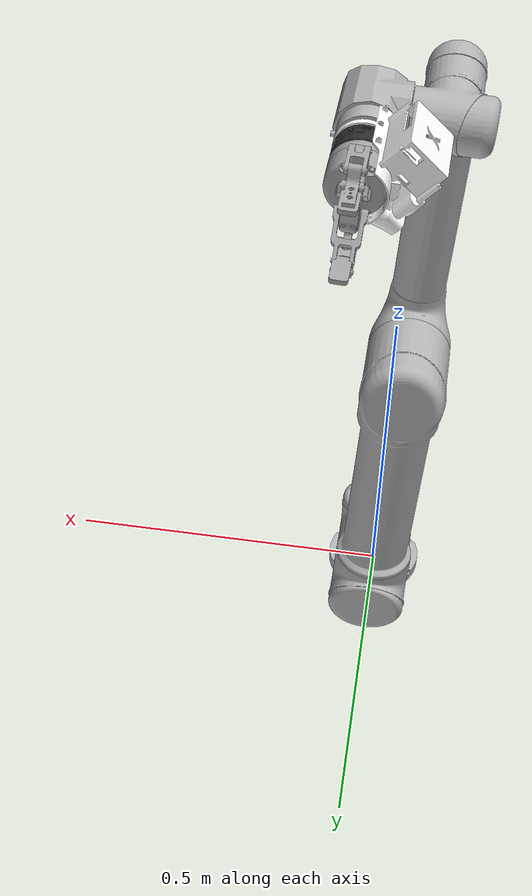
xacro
<?xml version="1.0"?>
<robot name="egomo_ur5" xmlns:xacro="http://ros.org/wiki/xacro">
    <xacro:include filename="$(find egomo_ur5)/urdf/ur5_robot.urdf.xacro" />
    <xacro:include filename="$(find egomo_ur5)/urdf/egomo_sensor.urdf.xacro" />
    <xacro:include filename="$(find egomo_ur5)/urdf/robotiq_85_gripper.urdf.xacro" />

    <link name="world" />
    <!-- ==============add UR5 robot arm=================== -->
    <xacro:ur5 prefix="" parent="world">
        <origin xyz="0 0 0" rpy="0 0 0" />
    </xacro:ur5>

    <!-- ==============add EGOMO senor component=============== -->
    <xacro:egomo_sensor prefix="" parent="wrist_3_link">
        <origin xyz="0 0 0.011" rpy="0 0 0" />
    </xacro:egomo_sensor>

    <!-- ==============add gripper========== -->
    <xacro:robotiq_85_gripper prefix="" parent="fts_toolside">
        <origin xyz="0 0 -0.003" rpy="0 0 0" />
    </xacro:robotiq_85_gripper>

    <!-- ==============add tool0 for moveit naming convention=========== -->
    <link name="tool0" />
    <joint name="fts_toolside-tool0_fixed_joint" type="fixed">
        <origin rpy="0  0 0" xyz="0 0.0 0.175" />
        <parent link="fts_toolside" />
        <child link="tool0" />
    </joint>

</robot>

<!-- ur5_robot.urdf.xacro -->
<!-- |    This document was autogenerated by xacro from ur5_joint_limited_robot.urdf.xacro | -->
<!-- |    EDITING THIS FILE BY HAND IS NOT RECOMMENDED                                 | -->
<robot name="ur5" xmlns:xacro="http://ros.org/wiki/xacro">
<xacro:include filename="$(find egomo_ur5)/urdf/default_ur5_DH_parameters.xacro" />

    <xacro:property name="pi" value="3.1415926535898" />
    <!-- Inertia parameters -->
    <xacro:property name="base_mass" value="4.0" />
    <!-- This mass might be incorrect -->
    <xacro:property name="shoulder_mass" value="3.7000" />
    <xacro:property name="upper_arm_mass" value="8.3930" />
    <xacro:property name="forearm_mass" value="2.2750" />
    <xacro:property name="wrist_1_mass" value="1.2190" />
    <xacro:property name="wrist_2_mass" value="1.2190" />
    <xacro:property name="wrist_3_mass" value="0.1879" />
    <xacro:property name="shoulder_cog" value="0.0 0.00193 -0.02561" />
    <xacro:property name="upper_arm_cog" value="0.0 -0.024201 0.2125" />
    <xacro:property name="forearm_cog" value="0.0 0.0265 0.11993" />
    <xacro:property name="wrist_1_cog" value="0.0 0.110949 0.01634" />
    <xacro:property name="wrist_2_cog" value="0.0 0.0018 0.11099" />
    <xacro:property name="wrist_3_cog" value="0.0 0.001159 0.0" />

    <!-- Kinematic model -->
    <!-- Properties from urcontrol.conf -->

    <!-- Arbitrary offsets for shoulder/elbow joints -->
    <xacro:property name="shoulder_offset" value="0.13585" />
    <!-- measured from model -->
    <xacro:property name="elbow_offset" value="0.1197" />
    <!-- measured from model -->
    <!-- link lengths used in model -->
    <xacro:property name="shoulder_height" value="${ur5_d1}" />
    <xacro:property name="upper_arm_length" value="${-ur5_a2}" />
    <xacro:property name="forearm_length" value="${-ur5_a3}" />
    <xacro:property name="wrist_1_length" value="${ur5_d4  + shoulder_offset+ elbow_offset}" />
    <xacro:property name="wrist_2_length" value="${ur5_d5}" />
    <xacro:property name="wrist_3_length" value="${ur5_d6}" />
    <!--property name="shoulder_height" value="0.089159" /-->
    <!--property name="shoulder_offset" value="0.13585" /-->
    <!-- shoulder_offset - elbow_offset + wrist_1_length = 0.10915 -->
    <!--property name="upper_arm_length" value="0.42500" /-->
    <!--property name="elbow_offset" value="0.1197" /-->
    <!-- CAD measured -->
    <!--property name="forearm_length" value="0.39225" /-->
    <!--property name="wrist_1_length" value="0.093" /-->
    <!-- CAD measured -->
    <!--property name="wrist_2_length" value="0.09465" /-->
    <!-- In CAD this distance is 0.930, but in the spec it is 0.09465 -->
    <!--property name="wrist_3_length" value="0.0823" /-->
    <xacro:property name="shoulder_radius" value="0.060" />
    <!-- manually measured -->
    <xacro:property name="upper_arm_radius" value="0.054" />
    <!-- manually measured -->
    <xacro:property name="elbow_radius" value="0.060" />
    <!-- manually measured -->
    <xacro:property name="forearm_radius" value="0.040" />
    <!-- manually measured -->
    <xacro:property name="wrist_radius" value="0.045" />
    <!-- manually measured -->
<!-- Components -->
<xacro:macro name="ur5" params="prefix parent *origin">
    <joint name="world_joint" type="fixed">
        <parent link="${parent}" />
        <child link="base_link" />
        <xacro:insert_block name="origin" />
    </joint>
    <link name="base_link">
        <visual>
            <geometry>
                <mesh filename="package://egomo_ur5/meshes/ur5/visual/base.dae" />
            </geometry>
            <material name="LightGrey">
                <color rgba="0.7 0.7 0.7 1.0" />
            </material>
        </visual>
        <collision>
            <geometry>
                <mesh filename="package://egomo_ur5/meshes/ur5/collision/base.stl" />
            </geometry>
        </collision>
        <inertial>
            <mass value="4.0" />
            <origin rpy="0 0 0" xyz="0.0 0.0 0.0" />
            <inertia ixx="0.00443333156" ixy="0.0" ixz="0.0" iyy="0.00443333156" iyz="0.0" izz="0.0072" />
        </inertial>
    </link>
    <joint name="shoulder_pan_joint" type="revolute">
        <!--Joint 1-->
        <parent link="base_link" />
        <child link="shoulder_linka" />
        <origin rpy="0.0 0.0 ${theta_1}" xyz="0.0 0.0 ${ur5_d1}" />
        <!--origin rpy="0.0 0.0 0.7853981625" xyz="0.0 0.0 0.089159"/-->
        <axis xyz="0 0 1" />
        <limit effort="150.0" lower="-3.14159265" upper="3.14159265" velocity="3.15" />
        <dynamics damping="0.0" friction="0.0" />
    </joint>
    <link name="shoulder_linka">
        <visual>
            <origin xyz="0 0 0.0" rpy="0.0 0 0" />
            <geometry>
                <mesh filename="package://egomo_ur5/meshes/ur5/visual/shoulder.dae" />
            </geometry>
            <material name="LightGrey">
                <color rgba="0.7 0.7 0.7 1.0" />
            </material>
        </visual>
        <collision>
            <geometry>
                <mesh filename="package://egomo_ur5/meshes/ur5/collision/shoulder.stl" />
            </geometry>
        </collision>
        <inertial>
            <mass value="3.7" />
            <origin rpy="0 0 0" xyz="0.0 0.0 0.0" />
            <inertia ixx="0.010267495893" ixy="0.0" ixz="0.0" iyy="0.010267495893" iyz="0.0" izz="0.00666" />
        </inertial>
    </link>
    <joint name="shoulder_pan_joint_F" type="fixed">
        <!--Joint 1-->
        <parent link="shoulder_linka" />
        <child link="shoulder_link" />
        <origin rpy="${alpha_1} 0.0 0.0" xyz="${ur5_a1} 0.0 0.0" />
    </joint>
    <link name="shoulder_link">
        <visual>
            <geometry>
                <box size="0 0 0" />
            </geometry>
            <material name="LightGrey">
                <color rgba="0.7 0.7 0.7 1.0" />
            </material>
        </visual>
        <inertial>
            <origin xyz="0 0 0" rpy="0 0 0" />
            <mass value="1" />
            <inertia ixx="1.0" ixy="0.0" ixz="0.0" iyy="1.0" iyz="0.0" izz="1.0" />
        </inertial>
    </link>
    <joint name="shoulder_lift_joint" type="revolute">
        <!--Joint 2-->
        <parent link="shoulder_link" />
        <child link="upper_arm_linka" />
        <origin rpy="0.0 0.0 ${theta_2}" xyz="0.0 0.0 ${ur5_d2}" />
        <!--Joint 2-->
        <axis xyz="0 0 -1" />
        <limit effort="150.0" lower="-3.14159265" upper="-0.1" velocity="3.15" />
        <dynamics damping="0.0" friction="0.0" />
    </joint>
    <link name="upper_arm_linka">
        <visual>
            <origin xyz="0 0 ${-shoulder_offset}" rpy="${pi/2} ${pi} ${pi/2}" />
            <geometry>
                <mesh filename="package://egomo_ur5/meshes/ur5/visual/upper_arm.dae" />
            </geometry>
            <material name="LightGrey">
                <color rgba="0.7 0.7 0.7 1.0" />
            </material>
        </visual>
        <collision>
            <origin xyz="0 0 ${-shoulder_offset}" rpy="${pi/2} ${pi} ${pi/2}" />
            <geometry>
                <mesh filename="package://egomo_ur5/meshes/ur5/collision/upper_arm.stl" />
            </geometry>
        </collision>
        <inertial>
            <mass value="8.393" />
            <origin rpy="0 0 0" xyz="0.0 0.0 0.28" />
            <inertia ixx="0.22689067591" ixy="0.0" ixz="0.0" iyy="0.22689067591" iyz="0.0" izz="0.0151074" />
        </inertial>
    </link>
    <joint name="upper_arm_link_F" type="fixed">
        <!--Joint 1-->
        <parent link="upper_arm_linka" />
        <child link="upper_arm_link" />
        <origin rpy="${alpha_2} 0.0 0.0" xyz="${ur5_a2} 0.0  0.0 " />
    </joint>
    <link name="upper_arm_link">
        <visual>
            <geometry>
                <box size="0 0 0" />
            </geometry>
            <material name="LightGrey">
                <color rgba="0.7 0.7 0.7 1.0" />
            </material>
        </visual>
        <inertial>
            <origin xyz="0 0 0" rpy="0 0 0" />
            <mass value="1" />
            <inertia ixx="1.0" ixy="0.0" ixz="0.0" iyy="1.0" iyz="0.0" izz="1.0" />
        </inertial>
    </link>
    <joint name="elbow_joint" type="revolute">
        <!--Joint 3-->
        <parent link="upper_arm_link" />
        <child link="forearm_linka" />
        <origin rpy="0.0 0.0 ${theta_3}" xyz="0.0 0.0 ${ur5_d3}" />
        <axis xyz="0 0 -1" />
        <limit effort="150.0" lower="-3" upper="3" velocity="3.15" />
        <!-- +/- 175 deg -->
        <dynamics damping="0.0" friction="0.0" />
    </joint>
    <link name="forearm_linka">
        <visual>
            <origin xyz="0 0 ${elbow_offset-shoulder_offset}" rpy="${pi/2} ${pi} ${pi/2}" />
            <geometry>
                <mesh filename="package://egomo_ur5/meshes/ur5/visual/forearm.dae" />
            </geometry>
            <material name="LightGrey">
                <color rgba="0.7 0.7 0.7 1.0" />
            </material>
        </visual>
        <collision>
            <origin xyz="0 0 ${elbow_offset-shoulder_offset}" rpy="${pi/2} ${pi} ${pi/2}" />
            <geometry>
                <mesh filename="package://egomo_ur5/meshes/ur5/collision/forearm.stl" />
            </geometry>
        </collision>
        <inertial>
            <mass value="2.275" />
            <origin rpy="0 0 0" xyz="0.0 0.0 0.25" />
            <inertia ixx="0.049443313556" ixy="0.0" ixz="0.0" iyy="0.049443313556" iyz="0.0" izz="0.004095" />
        </inertial>
    </link>
    <joint name="elbow_joint_F" type="fixed">
        <!--Joint 1-->
        <parent link="forearm_linka" />
        <child link="forearm_link" />
        <origin rpy="${alpha_3} 0.0 0.0" xyz="${ur5_a3} 0.0   0.0" />
    </joint>
    <link name="forearm_link">
        <visual>
            <geometry>
                <box size="0 0 0" />
            </geometry>
            <material name="LightGrey">
                <color rgba="0.7 0.7 0.7 1.0" />
            </material>
        </visual>
        <inertial>
            <origin xyz="0 0 0" rpy="0 0 0" />
            <mass value="1" />
            <inertia ixx="1.0" ixy="0.0" ixz="0.0" iyy="1.0" iyz="0.0" izz="1.0" />
        </inertial>
    </link>
    <joint name="wrist_1_joint" type="revolute">
        <parent link="forearm_link" />
        <child link="wrist_1_linka" />
        <origin xyz="0.0 0.0 ${ur5_d4}" rpy="0.0 0.0 ${theta_4}" />
        <axis xyz="0 0 -1" />
        <!--limit effort="28.0" lower="-3.92" upper="0.78" velocity="3.2" /-->
        <limit effort="28.0" lower="-${pi}" upper="${pi}" velocity="3.2" />
        <!-- -225 deg to 45 deg -->
        <dynamics damping="0.0" friction="0.0" />
    </joint>
    <link name="wrist_1_linka">
        <visual>
            <origin xyz="0 0 ${0.10915+(elbow_offset-shoulder_offset)}" rpy="${pi/2}  ${pi} 0" />
            <geometry>
                <mesh filename="package://egomo_ur5/meshes/ur5/visual/wrist_1.dae" />
            </geometry>
            <material name="LightGrey">
                <color rgba="0.7 0.7 0.7 1.0" />
            </material>
        </visual>
        <collision>
            <origin xyz="0 0 ${0.10915+(elbow_offset-shoulder_offset)}" rpy="${pi/2}  ${pi} 0" />
            <geometry>
                <mesh filename="package://egomo_ur5/meshes/ur5/collision/wrist_1.stl" />
            </geometry>
        </collision>
        <inertial>
            <mass value="1.219" />
            <origin rpy="0 0 0" xyz="0.0 0.0 0.0" />
            <inertia ixx="0.111172755531" ixy="0.0" ixz="0.0" iyy="0.111172755531" iyz="0.0" izz="0.21942" />
        </inertial>
    </link>
    <joint name="wrist_1_joint_F" type="fixed">
        <!--Joint 1-->
        <parent link="wrist_1_linka" />
        <child link="wrist_1_link" />
        <origin rpy="${alpha_4} 0.0 0.0" xyz="${ur5_a4} 0.0 0.0" />
    </joint>
    <link name="wrist_1_link">
        <visual>
            <geometry>
                <box size="0 0 0" />
            </geometry>
            <material name="LightGrey">
                <color rgba="0.7 0.7 0.7 1.0" />
            </material>
        </visual>
        <inertial>
            <origin xyz="0 0 0" rpy="0 0 0" />
            <mass value="1" />
            <inertia ixx="1.0" ixy="0.0" ixz="0.0" iyy="1.0" iyz="0.0" izz="1.0" />
        </inertial>
    </link>
    <joint name="wrist_2_joint" type="revolute">
        <parent link="wrist_1_link" />
        <child link="wrist_2_linka" />
        <origin rpy="0.0 0.0 ${theta_5}" xyz="0.0 0.0  ${ur5_d5}" />
        <axis xyz="0 0 1" />
        <limit effort="28.0" lower="-${pi}" upper="${pi}" velocity="3.15" />
        <dynamics damping="0.0" friction="0.0" />
    </joint>
    <link name="wrist_2_linka">
        <visual>
            <geometry>
                <box size="0 0 0" />
            </geometry>
            <material name="LightGrey">
                <color rgba="0.7 0.7 0.7 1.0" />
            </material>
        </visual>
        <inertial>
            <origin xyz="0 0 0" rpy="0 0 0" />
            <mass value="1" />
            <inertia ixx="1.0" ixy="0.0" ixz="0.0" iyy="1.0" iyz="0.0" izz="1.0" />
        </inertial>
    </link>
    <joint name="wrist_2_joint_F" type="fixed">
        <!--Joint 1-->
        <parent link="wrist_2_linka" />
        <child link="wrist_2_link" />
        <origin rpy="${alpha_5} 0.0 0.0" xyz="${ur5_a5} 0.0  0.0" />
    </joint>
    <link name="wrist_2_link">
        <visual>
            <origin xyz="0 0.09465 0" rpy="-${pi/2} 0 ${pi}" />
            <geometry>
                <mesh filename="package://egomo_ur5/meshes/ur5/visual/wrist_2.dae" />
            </geometry>
            <material name="LightGrey">
                <color rgba="0.7 0.7 0.7 1.0" />
            </material>
        </visual>
        <collision>
            <origin xyz="0 0.09465 0" rpy="-${pi/2} 0 ${pi}" />
            <geometry>
                <mesh filename="package://egomo_ur5/meshes/ur5/collision/wrist_2.stl" />
            </geometry>
        </collision>
        <inertial>
            <mass value="1.219" />
            <origin rpy="0 0 0" xyz="0.0 0.0 0.0" />
            <inertia ixx="0.111172755531" ixy="0.0" ixz="0.0" iyy="0.111172755531" iyz="0.0" izz="0.21942" />
        </inertial>
    </link>
    <joint name="wrist_3_joint" type="revolute">
        <parent link="wrist_2_link" />
        <child link="wrist_3_linka" />
        <origin rpy="0.0 0.0 ${theta_6}" xyz="0.0 0.0 ${ur5_d6}" />
        <axis xyz="0 0 -1" />
        <limit effort="28.0" lower="-${1.277*pi}" upper="${1.277*pi}" velocity="3.15" />
        <dynamics damping="0.0" friction="0.0" />
    </joint>
    <link name="wrist_3_linka">
        <visual>
            <geometry>
                <box size="0 0 0" />
            </geometry>
            <material name="LightGrey">
                <color rgba="0.7 0.7 0.7 1.0" />
            </material>
        </visual>
        <inertial>
            <origin xyz="0 0 0" rpy="0 0 0" />
            <mass value="1" />
            <inertia ixx="1.0" ixy="0.0" ixz="0.0" iyy="1.0" iyz="0.0" izz="1.0" />
        </inertial>
    </link>
    <joint name="wrist_3_joint_F" type="fixed">
        <!--Joint 1-->
        <parent link="wrist_3_linka" />
        <child link="wrist_3_link" />
        <origin rpy="${alpha_6} 0.0 0.0" xyz=" ${ur5_a6} 0.0  0.0" />
    </joint>
    <link name="wrist_3_link">
        <visual>
            <origin xyz="0 0 -0.0823" rpy="-${pi/2} ${pi} ${pi}" />
            <geometry>
                <mesh filename="package://egomo_ur5/meshes/ur5/visual/wrist_3.dae" />
            </geometry>
            <material name="LightGrey">
                <color rgba="0.7 0.7 0.7 1.0" />
            </material>
        </visual>
        <collision>
            <origin xyz="0 0 -0.0823" rpy="-${pi/2} ${pi} ${pi}" />
            <geometry>
                <mesh filename="package://egomo_ur5/meshes/ur5/collision/wrist_3.stl" />
            </geometry>
        </collision>
        <inertial>
            <mass value="0.1879" />
            <origin rpy="0 0 0" xyz="0.0 0.0 0.0" />
            <inertia ixx="0.0171364731454" ixy="0.0" ixz="0.0" iyy="0.0171364731454" iyz="0.0" izz="0.033822" />
        </inertial>
    </link>
    <joint name="ee_fixed_joint" type="fixed">
        <parent link="wrist_3_link" />
        <child link="ee_link" />
        <origin rpy="0.0 0.0 0.0" xyz="0.0 0.0 0.0" />
        <axis xyz="0 0 1" />
    </joint>
    <link name="ee_link">
        <collision>
            <geometry>
                <box size="0.01 0.01 0.01" />
            </geometry>
            <origin rpy="0 0 0" xyz="-0.01 0 0" />
        </collision>
    </link>
    <!--TRANSMISSION FOR THE ARM-->
    <transmission name="shoulder_pan_trans">
        <type>transmission_interface/SimpleTransmission</type>
        <joint name="shoulder_pan_joint">
            <hardwareInterface>PositionJointInterface</hardwareInterface>
        </joint>
        <actuator name="shoulder_pan_motor">
            <mechanicalReduction>1</mechanicalReduction>
        </actuator>
    </transmission>
    <transmission name="shoulder_lift_trans">
        <type>transmission_interface/SimpleTransmission</type>
        <joint name="shoulder_lift_joint">
            <hardwareInterface>PositionJointInterface</hardwareInterface>
        </joint>
        <actuator name="shoulder_lift_motor">
            <mechanicalReduction>1</mechanicalReduction>
        </actuator>
    </transmission>
    <transmission name="elbow_trans">
        <type>transmission_interface/SimpleTransmission</type>
        <joint name="elbow_joint">
            <hardwareInterface>PositionJointInterface</hardwareInterface>
        </joint>
        <actuator name="elbow_motor">
            <mechanicalReduction>1</mechanicalReduction>
        </actuator>
    </transmission>
    <transmission name="wrist_1_trans">
        <type>transmission_interface/SimpleTransmission</type>
        <joint name="wrist_1_joint">
            <hardwareInterface>PositionJointInterface</hardwareInterface>
        </joint>
        <actuator name="wrist_1_motor">
            <mechanicalReduction>1</mechanicalReduction>
        </actuator>
    </transmission>
    <transmission name="wrist_2_trans">
        <type>transmission_interface/SimpleTransmission</type>
        <joint name="wrist_2_joint">
            <hardwareInterface>PositionJointInterface</hardwareInterface>
        </joint>
        <actuator name="wrist_2_motor">
            <mechanicalReduction>1</mechanicalReduction>
        </actuator>
    </transmission>
    <transmission name="wrist_3_trans">
        <type>transmission_interface/SimpleTransmission</type>
        <joint name="wrist_3_joint">
            <hardwareInterface>PositionJointInterface</hardwareInterface>
        </joint>
        <actuator name="wrist_3_motor">
            <mechanicalReduction>1</mechanicalReduction>
        </actuator>
    </transmission>
 <!-- ur5 arm -->
    <!-- common stuff -->
    <gazebo>
        <plugin filename="libgazebo_ros_control.so" name="ros_control">
        </plugin>
    </gazebo>
</xacro:macro>

</robot>

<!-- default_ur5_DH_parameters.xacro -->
<robot xmlns:xacro="http://ros.org/wiki/xacro">

    <property name="theta_1" value="-0.00205442" />
    <property name="ur5_d1" value="0.089159" />
    <property name="ur5_a1" value="0.0" />
    <property name="alpha_1" value="1.57718" />

    <property name="theta_2" value="-0.000123686" />
    <property name="ur5_d2" value="0.0" />
    <property name="ur5_a2" value="0.42500" />
    <property name="alpha_2" value="-0.00201947" />

    <property name="theta_3" value="-0.000189364" />
    <property name="ur5_d3" value="0.0" />
    <property name="ur5_a3" value="0.39225" />
    <property name="alpha_3" value="-0.00944871" />

    <property name="theta_4" value="0.000488426" />
    <property name="ur5_d4" value="-0.10915" />
    <property name="ur5_a4" value="0.0" />
    <property name="alpha_4" value="1.57342" />

    <property name="theta_5" value="-0.000123914" />
    <property name="ur5_d5" value="0.09465" />
    <property name="ur5_a5" value="0.0" />
    <property name="alpha_5" value="-1.57255" />

    <property name="theta_6" value="3.14254" />
    <property name="ur5_d6" value="-0.0823" />
    <property name="ur5_a6" value="0.0" />
    <property name="alpha_6" value="3.14331" />

</robot>

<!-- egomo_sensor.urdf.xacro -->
<robot name="egomo_sensor" xmlns:xacro="http://ros.org/wiki/xacro">
    <xacro:include filename="$(find egomo_ur5)/urdf/default_egomo_sensor_parameters.xacro" />
    <xacro:macro name="egomo_sensor" params="prefix parent *origin">
        <xacro:property name="pi" value="3.1415926535898" />
        <!-- Mount the force torque sensor (fts) to the robot -->
        <joint name="${prefix}fts_to_robot" type="fixed">
            <parent link="${parent}" />
            <child link="fts_robotside" />
            <xacro:insert_block name="origin" />
        </joint>
        <!-- force torque sensor (robotiq) -->
        <link name="${prefix}fts_robotside">
            <inertial>
                <origin rpy="0 0 0" xyz="0 0 0" />
                <mass value="0.65" />
                <inertia ixx="0.000661171875" ixy="0" ixz="0" iyy="0.000661171875" iyz="0" izz="0.00117" />
            </inertial>
            <visual>
                <origin rpy="0 ${pi} -${pi/2}" xyz="0 0 0.0375" />
                <geometry>
                    <mesh filename="package://egomo_ur5/meshes/robotiq-ft300/visual/ft300.dae" />
                </geometry>
            </visual>
            <collision>
                <origin rpy="0 ${pi} -${pi/2}" xyz="0 0 0.0375" />
                <geometry>
                    <mesh filename="package://egomo_ur5/meshes/robotiq-ft300/collision/ft300.stl" />
                </geometry>
            </collision>
        </link>
        <!-- virtual measurement frame -->
        <joint name="${prefix}measurment_joint" type="fixed">
            <origin rpy="0 0 0" xyz="0 0 0.01625" />
            <parent link="${prefix}fts_robotside" />
            <child link="${prefix}robotiq_force_torque_frame_id" />
        </joint>
        <link name="${prefix}robotiq_force_torque_frame_id" />
        <!-- toolside frame -->
        <joint name="${prefix}toolside_joint" type="fixed">
            <origin rpy="0 0 0" xyz="0 0 0.0375" />
            <parent link="${prefix}fts_robotside" />
            <child link="${prefix}fts_toolside" />
        </joint>
        <link name="${prefix}fts_toolside" />
	  <link name="camera_robotside">
	    <visual>
	      <origin rpy="0 0 0" xyz="0 0 0"/>
	      <geometry>
		<mesh filename="package://egomo_ur5/meshes/egomo-1/visual/egomo-1.dae"/>
	      </geometry>
	      <material name="white">
		<color rgba="1 1 1 1"/>
	      </material>
	    </visual>
	    <collision>
	      <origin rpy="0 0 0" xyz="0 0 0"/>
	      <geometry>
		<mesh filename="package://egomo_ur5/meshes/egomo-1/collision/egomo-1.stl"/>
	      </geometry>
	    </collision>
	  </link>
        <!-- Mount the sensor mount to the robot -->
        <joint name="${prefix}camera_to_robot" type="fixed">
            <parent link="${parent}" />
            <child link="camera_robotside" />
            <origin xyz="0 0 0" rpy="0 0 0" />
        </joint>

        <link name="${prefix}egomo_side_cam">
        </link>
	<!-- Mount the cameras to the robot -->
        <joint name="${prefix}egomo_side_cam_to_robot" type="fixed">
            <parent link="${parent}" />
            <child link="egomo_side_cam" />
	    <xacro:insert_block name="egomo_side_cam_origin" />
        </joint>
        <link name="${prefix}egomo_front_cam">
        </link>
        <!-- Mount the cameras to the robot -->
        <joint name="${prefix}egomo_front_cam_to_robot" type="fixed">
            <parent link="${parent}" />
            <child link="egomo_front_cam" />

	    <xacro:insert_block name="egomo_front_cam_origin" />
        </joint>

        <link name="${prefix}egomo_depth_cam">
        </link>
        <!-- Mount the cameras to the robot -->
        <joint name="${prefix}egomo_depth_cam_to_robot" type="fixed">
            <parent link="${parent}" />
            <child link="egomo_depth_cam" />
	    <xacro:insert_block name="egomo_depth_cam_origin" />
        </joint>

    </xacro:macro>
</robot>

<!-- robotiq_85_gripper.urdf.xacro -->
<robot name="robotiq_85_gripper" xmlns:xacro="http://ros.org/wiki/xacro">
    <xacro:macro name="robotiq_85_gripper" params="prefix parent *origin">
        <link name="${prefix}robotiq_85_coupling">
            <visual>
                <geometry>
                    <mesh filename="package://egomo_ur5/meshes/robotiq-2-finger-85/visual/gripper_coupling.dae" />
                </geometry>
                <origin rpy="0 0 ${pi}" xyz="0 0 0" />
            </visual>
            <collision>
                <geometry>
                    <mesh filename="package://egomo_ur5/meshes/robotiq-2-finger-85/collision/gripper_coupling.stl" />
                </geometry>
                <origin rpy="0 0 ${pi}" xyz="0 0 0" />
            </collision>
        </link>
        <!-- Mount the gripper to flansh -->
        <joint name="${prefix}gripper_to_flange" type="fixed">
            <parent link="${parent}" />
            <child link="${prefix}robotiq_85_coupling" />
            <xacro:insert_block name="origin" />
        </joint>
        <joint name="${prefix}robotiq_85_base_joint" type="fixed">
            <parent link="${prefix}robotiq_85_coupling" />
            <child link="robotiq_85_base" />
            <origin xyz="0 0 0.0109" rpy="0 0 0" />
            <xacro:insert_block name="origin" />
        </joint>
        <link name="${prefix}robotiq_85_base">
            <visual>
                <geometry>
                    <mesh filename="package://egomo_ur5/meshes/robotiq-2-finger-85/visual/gripper_base.dae" />
                </geometry>
                <origin rpy="0 0 ${pi}" xyz="0 0 0" />
            </visual>
            <collision>
                <geometry>
                    <mesh filename="package://egomo_ur5/meshes/robotiq-2-finger-85/collision/gripper_base.stl" />
                </geometry>
                <origin rpy="0 0 ${pi}" xyz="0 0 0" />
            </collision>
        </link>
        <link name="${prefix}robotiq_85_finger_right_1">
            <visual>
                <geometry>
                    <mesh filename="package://egomo_ur5/meshes/robotiq-2-finger-85/visual/gripper_finger_right_1.dae" />
                </geometry>
                <origin rpy="0 0 3.14159265359" xyz="-0.0305864 0 -0.0549191" />
            </visual>
            <collision>
                <geometry>
                    <mesh filename="package://egomo_ur5/meshes/robotiq-2-finger-85/collision/gripper_finger_right_1.stl" />
                </geometry>
                <origin rpy="0 0 3.14159265359" xyz="-0.0305864 0 -0.0549191" />
            </collision>
        </link>
        <link name="${prefix}robotiq_85_finger_right_2">
            <visual>
                <geometry>
                    <mesh filename="package://egomo_ur5/meshes/robotiq-2-finger-85/visual/gripper_finger_right_2.dae" />
                </geometry>
                <origin rpy="0 0 3.14159265359" xyz="-0.0621231 0 -0.0511592" />
            </visual>
            <collision>
                <geometry>
                    <mesh filename="package://egomo_ur5/meshes/robotiq-2-finger-85/collision/gripper_finger_right_2.stl" />
                </geometry>
                <origin rpy="0 0 3.14159265359" xyz="-0.0621231 0 -0.0511592" />
            </collision>
        </link>
        <link name="${prefix}robotiq_85_finger_right_3">
            <visual>
                <geometry>
                    <mesh filename="package://egomo_ur5/meshes/robotiq-2-finger-85/visual/gripper_finger_right_3.dae" />
                </geometry>
                <origin rpy="0 0 3.14159265359" xyz="-0.0127161 0 -0.0613987" />
            </visual>
            <collision>
                <geometry>
                    <mesh filename="package://egomo_ur5/meshes/robotiq-2-finger-85/collision/gripper_finger_right_3.stl" />
                </geometry>
                <origin rpy="0 0 3.14159265359" xyz="-0.0127161 0 -0.0613987" />
            </collision>
        </link>
        <link name="${prefix}robotiq_85_finger_right_4">
            <visual>
                <geometry>
                    <mesh filename="package://egomo_ur5/meshes/robotiq-2-finger-85/visual/gripper_finger_right_4.dae" />
                </geometry>
                <origin rpy="0 0 3.14159265359" xyz="-0.0498492 0 -0.1048415" />
            </visual>
            <collision>
                <geometry>
                    <mesh filename="package://egomo_ur5/meshes/robotiq-2-finger-85/collision/gripper_finger_right_4.stl" />
                </geometry>
                <origin rpy="0 0 3.14159265359" xyz="-0.0498492 0 -0.1048415" />
            </collision>
        </link>
        <link name="${prefix}robotiq_85_finger_left_1">
            <visual>
                <geometry>
                    <mesh filename="package://egomo_ur5/meshes/robotiq-2-finger-85/visual/gripper_finger_left_1.dae" />
                </geometry>
                <origin rpy="0 0 3.14159265359" xyz="0.0305864 0 -0.0549191" />
            </visual>
            <collision>
                <geometry>
                    <mesh filename="package://egomo_ur5/meshes/robotiq-2-finger-85/collision/gripper_finger_left_1.stl" />
                </geometry>
                <origin rpy="0 0 3.14159265359" xyz="0.0305864 0 -0.0549191" />
            </collision>
        </link>
        <link name="${prefix}robotiq_85_finger_left_2">
            <visual>
                <geometry>
                    <mesh filename="package://egomo_ur5/meshes/robotiq-2-finger-85/visual/gripper_finger_left_2.dae" />
                </geometry>
                <origin rpy="0 0 3.14159265359" xyz="0.0621231 0 -0.0511592" />
            </visual>
            <collision>
                <geometry>
                    <mesh filename="package://egomo_ur5/meshes/robotiq-2-finger-85/collision/gripper_finger_left_2.stl" />
                </geometry>
                <origin rpy="0 0 3.14159265359" xyz="0.0621231 0 -0.0511592" />
            </collision>
        </link>
        <link name="${prefix}robotiq_85_finger_left_3">
            <visual>
                <geometry>
                    <mesh filename="package://egomo_ur5/meshes/robotiq-2-finger-85/visual/gripper_finger_left_3.dae" />
                </geometry>
                <origin rpy="0 0 3.14159265359" xyz="0.0127161 0 -0.0613987" />
            </visual>
            <collision>
                <geometry>
                    <mesh filename="package://egomo_ur5/meshes/robotiq-2-finger-85/collision/gripper_finger_left_3.stl" />
                </geometry>
                <origin rpy="0 0 3.14159265359" xyz="0.0127161 0 -0.0613987" />
            </collision>
        </link>
        <link name="${prefix}robotiq_85_finger_left_4">
            <visual>
                <geometry>
                    <mesh filename="package://egomo_ur5/meshes/robotiq-2-finger-85/visual/gripper_finger_left_4.dae" />
                </geometry>
                <origin rpy="0 0 3.14159265359" xyz="0.0498492 0 -0.1048415" />
            </visual>
            <collision>
                <geometry>
                    <mesh filename="package://egomo_ur5/meshes/robotiq-2-finger-85/collision/gripper_finger_left_4.stl" />
                </geometry>
                <origin rpy="0 0 3.14159265359" xyz="0.0498492 0 -0.1048415" />
            </collision>
        </link>
        <joint name="${prefix}robotiq_85_finger_right_1_joint" type="revolute">
            <parent link="${prefix}robotiq_85_base" />
            <child link="${prefix}robotiq_85_finger_right_1" />
            <axis xyz="0 -1 0" />
            <origin rpy="0 0 0" xyz="0.0305864 0 0.0549191" />
            <limit effort="1000" lower="0" upper="0.811" velocity="2.0" />
        </joint>
        <joint name="${prefix}robotiq_85_finger_right_2_joint" type="fixed">
            <parent link="${prefix}robotiq_85_finger_right_1" />
            <child link="${prefix}robotiq_85_finger_right_2" />
            <axis xyz="0 1 0" />
            <origin rpy="0 0 0" xyz="0.0315367 0 -0.0037599" />
        </joint>
        <joint name="${prefix}robotiq_85_finger_right_3_joint" type="revolute">
            <parent link="${prefix}robotiq_85_base" />
            <child link="${prefix}robotiq_85_finger_right_3" />
            <axis xyz="0 1 0" />
            <origin rpy="0 0 0" xyz="0.0127161 0 0.0613987" />
            <limit effort="1000" lower="0" upper="0.811" velocity="2.0" />
            <mimic joint="robotiq_85_finger_right_1_joint" multiplier="-1" offset="0" />
        </joint>
        <joint name="${prefix}robotiq_85_finger_right_4_joint" type="revolute">
            <parent link="${prefix}robotiq_85_finger_right_3" />
            <child link="${prefix}robotiq_85_finger_right_4" />
            <axis xyz="0 1 0" />
            <origin rpy="0 0 0" xyz="0.0371331 0 0.0434428" />
            <mimic joint="${prefix}robotiq_85_finger_right_1_joint" multiplier="1" offset="0" />
            <limit effort="1000" lower="-0.811" upper="0" velocity="2.0" />
        </joint>
        <joint name="${prefix}robotiq_85_finger_left_1_joint" type="revolute">
            <parent link="robotiq_85_base" />
            <child link="${prefix}robotiq_85_finger_left_1" />
            <axis xyz="0 1 0" />
            <origin rpy="0 0 0" xyz="-0.0305864 0 0.0549191" />
            <mimic joint="${prefix}robotiq_85_finger_right_1_joint" multiplier="1" offset="0" />
            <limit effort="1000" lower="-0.811" upper="0" velocity="2.0" />
        </joint>
        <joint name="${prefix}robotiq_85_finger_left_2_joint" type="fixed">
            <parent link="${prefix}robotiq_85_finger_left_1" />
            <child link="${prefix}robotiq_85_finger_left_2" />
            <axis xyz="0 1 0" />
            <origin rpy="0 0 0" xyz="-0.0315367 0 -0.0037599" />
        </joint>
        <joint name="${prefix}robotiq_85_finger_left_3_joint" type="revolute">
            <parent link="${prefix}robotiq_85_base" />
            <child link="${prefix}robotiq_85_finger_left_3" />
            <axis xyz="0 1 0" />
            <origin rpy="0 0 0" xyz="-0.0127161 0 0.0613987" />
            <mimic joint="${prefix}robotiq_85_finger_right_1_joint" multiplier="1" offset="0" />
            <limit effort="1000" lower="-0.811" upper="0" velocity="2.0" />
        </joint>
        <joint name="${prefix}robotiq_85_finger_left_4_joint" type="revolute">
            <parent link="${prefix}robotiq_85_finger_left_3" />
            <child link="${prefix}robotiq_85_finger_left_4" />
            <axis xyz="0 1 0" />
            <origin rpy="0 0 0" xyz="-0.0371331 0 0.0434428" />
            <mimic joint="${prefix}robotiq_85_finger_right_1_joint" multiplier="-1" offset="0" />
            <limit effort="1000" lower="0" upper="0.811" velocity="2.0" />
        </joint>
    </xacro:macro>
</robot>
